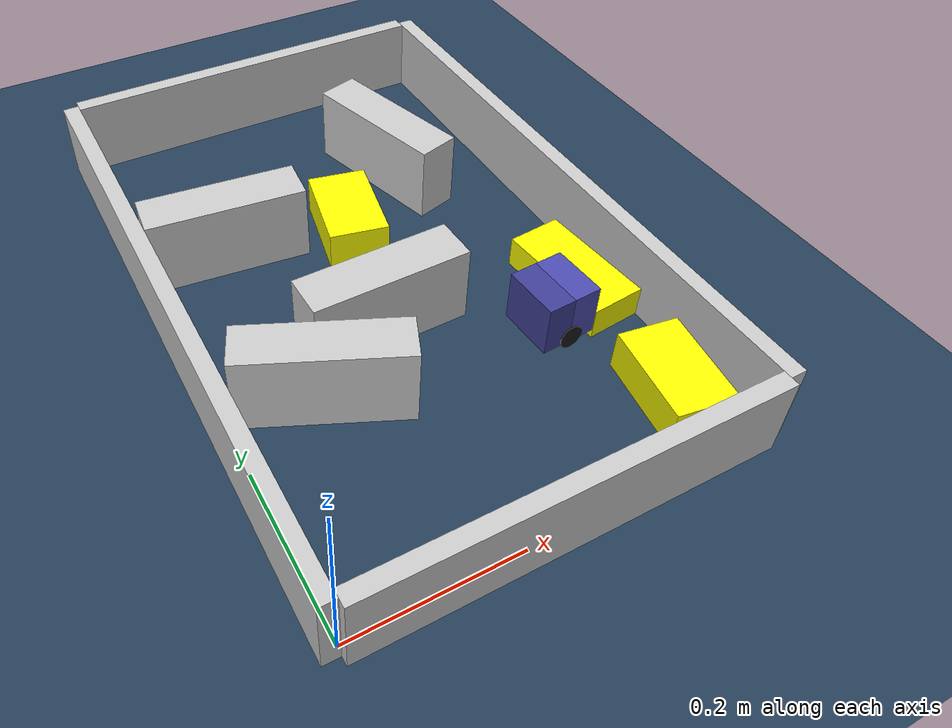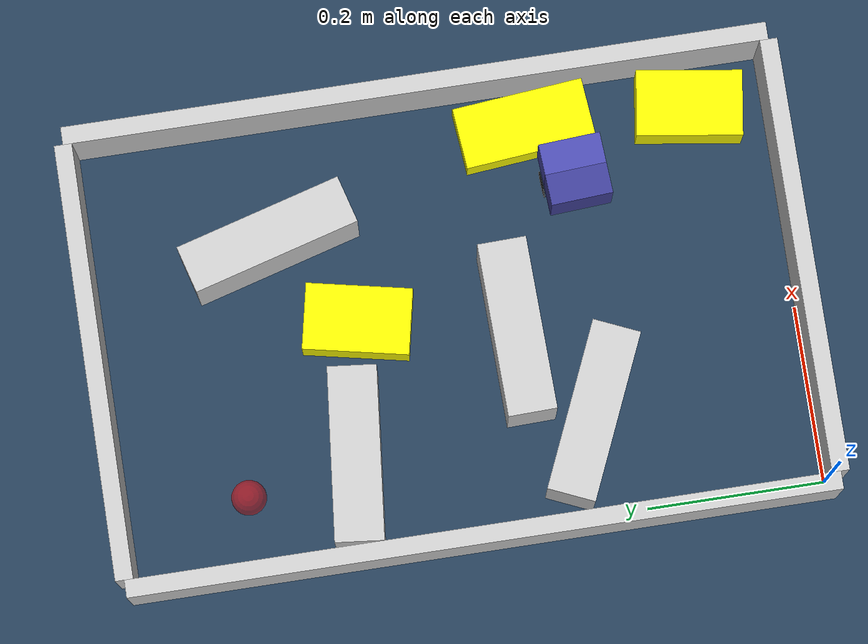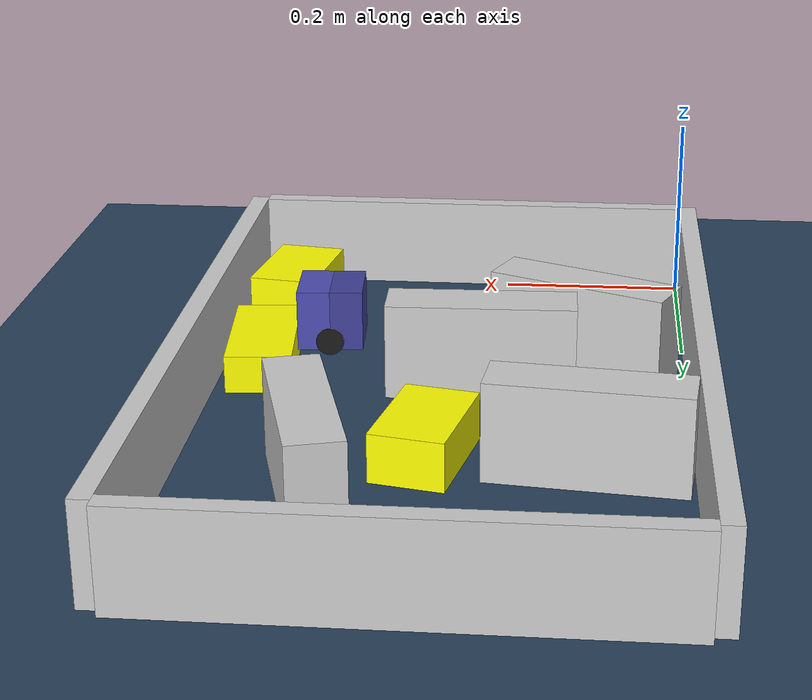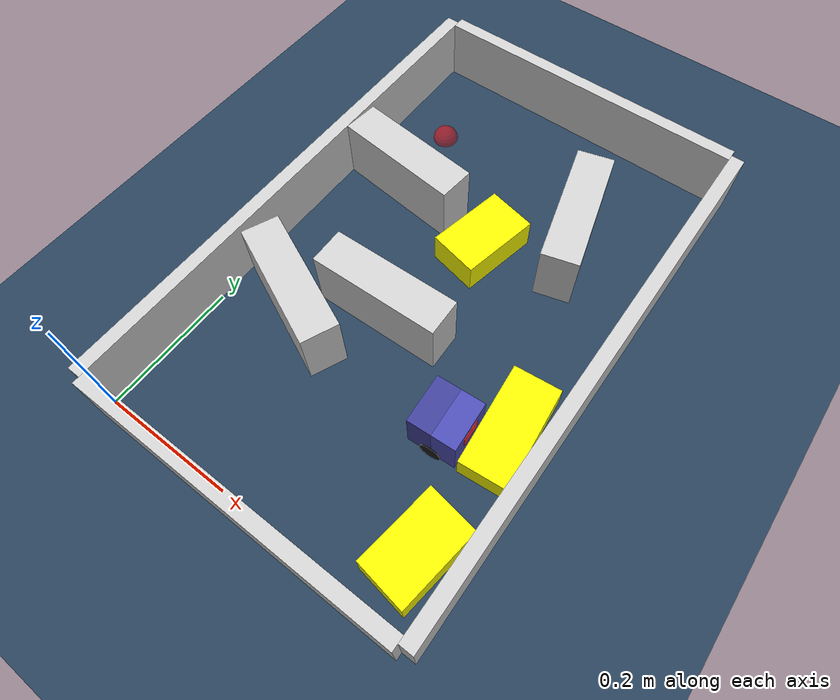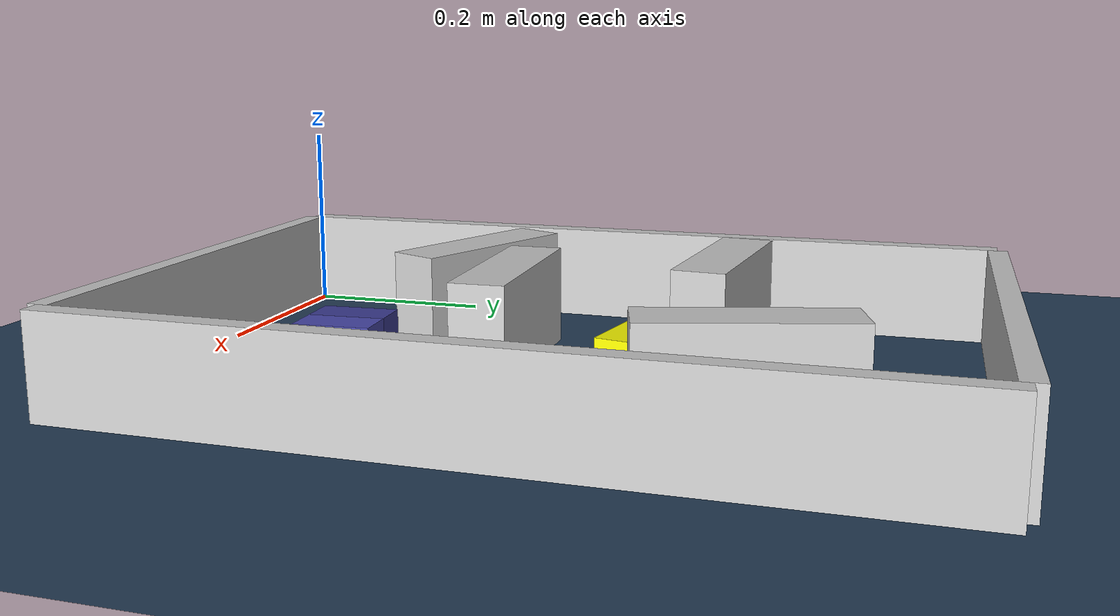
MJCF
<?xml version='1.0' encoding='utf-8'?>
<mujoco model="real_buildable">
  <compiler angle="degree" />
  <option timestep="0.002" integrator="implicitfast" iterations="100" cone="elliptic" />
  <default>
    <geom density="1" />
  </default>
  <asset>
    <texture builtin="gradient" height="3072" rgb1="0.3 0.5 0.7" rgb2="0 0 0" type="skybox" width="512" />
    <texture builtin="checker" height="300" mark="edge" markrgb="0.8 0.8 0.8" name="groundplane" rgb1="0.2 0.3 0.4" rgb2="0.1 0.2 0.3" type="2d" width="300" />
    <material name="groundplane" reflectance="0.2" texrepeat="5 5" texture="groundplane" texuniform="true" />
  </asset>
  <worldbody>
    <light dir="0 0 -1" directional="true" pos="0 0 1.5" />
    <geom name="floor" type="plane" condim="4" friction="0.5 0.005 0.001" material="groundplane" size="0 0 0.05" />
    <body name="walls">
      <geom name="wall_boundary_left" type="box" condim="4" friction="1.0 0.005 0.0001" rgba="0.8 0.8 0.8 1" pos="-0.010000 0.387500 0.050000" euler="0 0 0.000000" size="0.010000 0.397500 0.050000" />
      <geom name="wall_boundary_right" type="box" condim="4" friction="1.0 0.005 0.0001" rgba="0.8 0.8 0.8 1" pos="0.500000 0.387500 0.050000" euler="0 0 0.000000" size="0.010000 0.397500 0.050000" />
      <geom name="wall_boundary_bottom" type="box" condim="4" friction="1.0 0.005 0.0001" rgba="0.8 0.8 0.8 1" pos="0.245000 -0.010000 0.050000" euler="0 0 0.000000" size="0.245000 0.010000 0.050000" />
      <geom name="wall_boundary_top" type="box" condim="4" friction="1.0 0.005 0.0001" rgba="0.8 0.8 0.8 1" pos="0.245000 0.785000 0.050000" euler="0 0 0.000000" size="0.245000 0.010000 0.050000" />
      <geom name="wall_inner_1" type="box" condim="4" friction="1.0 0.005 0.0001" rgba="0.8 0.8 0.8 1" pos="0.212622 0.316752 0.050000" euler="0 0 1.464759" size="0.097500 0.027500 0.050000" />
      <geom name="wall_inner_2" type="box" condim="4" friction="1.0 0.005 0.0001" rgba="0.8 0.8 0.8 1" pos="0.107540 0.247215 0.050000" euler="0 0 -23.865866" size="0.097500 0.027500 0.050000" />
      <geom name="wall_inner_3" type="box" condim="4" friction="1.0 0.005 0.0001" rgba="0.8 0.8 0.8 1" pos="0.100000 0.514000 0.050000" euler="0 0 174.100000" size="0.097500 0.027500 0.050000" />
      <geom name="wall_inner_4" type="box" condim="4" friction="1.0 0.005 0.0001" rgba="0.8 0.8 0.8 1" pos="0.356000 0.575000 0.050000" euler="0 0 105.500000" size="0.097500 0.027500 0.050000" />
    </body>
    <body name="car" pos="0.38094706187373378 0.22420285340945495 0.01" quat="0.99951504492416665 0 0 0.031139604529299387">
      <freejoint name="car_freejoint" />
      <inertial pos="0 0 0.0375" mass="0.35" diaginertia="0.000266 0.000266 0.000286" />
      <geom name="front_chassis_collision" type="box" pos="0.0175 0 0.0375" size="0.0175 0.035 0.0325" rgba="0.3 0.3 0.7 1" />
      <geom name="rear_chassis_collision" type="box" pos="-0.0175 0 0.0375" size="0.0175 0.035 0.0325" rgba="0.25 0.25 0.6 1" />
      <geom name="front_marker" type="box" pos="0.034 0 0.0505" size="0.002 0.015 0.01" rgba="1 0.2 0.2 1" contype="0" conaffinity="0" />
      <body name="rear_support_body" pos="-0.03 0 0.0025">
        <joint name="rear_caster_joint" type="ball" damping="0.0001" />
        <inertial pos="0 0 0" mass="0.025" diaginertia="0.000001 0.000001 0.000001" />
        <geom name="rear_support" type="sphere" pos="0 0 0" size="0.0025" friction="0 0 0" rgba="0.7 0.1 0.1 1" />
      </body>
      <body name="front_support_body" pos="0.03 0 0.0025">
        <joint name="front_caster_joint" type="ball" damping="0.0001" />
        <inertial pos="0 0 0" mass="0.025" diaginertia="0.000001 0.000001 0.000001" />
        <geom name="front_support" type="sphere" pos="0 0 0" size="0.0025" friction="0 0 0" rgba="0.1 0.7 0.1 1" />
      </body>
      <body name="left_wheel" pos="0 0.0375 0.015">
        <inertial pos="0 0 0" mass="0.05" diaginertia="0.000003 0.000006 0.000003" />
        <joint name="left_wheel_joint" type="hinge" axis="0 1 0" damping="0.01" armature="0.0001" />
        <geom name="left_wheel_collision" type="cylinder" size="0.015 0.0005" euler="90 0 0" rgba="0.1 0.1 0.1 1" />
      </body>
      <body name="right_wheel" pos="0 -0.0375 0.015">
        <inertial pos="0 0 0" mass="0.05" diaginertia="0.000003 0.000006 0.000003" />
        <joint name="right_wheel_joint" type="hinge" axis="0 1 0" damping="0.01" armature="0.0001" />
        <geom name="right_wheel_collision" type="cylinder" size="0.015 0.0005" euler="90 0 0" rgba="0.1 0.1 0.1 1" />
      </body>
    </body>
    <body name="obstacle_0_movable">
      <geom name="obstacle_0_movable" condim="4" pos="0.44830181522767837 0.27112622411178272 0.02" friction="1 0.005 0.0001" rgba="1 1 0 1" size="0.035000 0.075000 0.020000" type="box" mass="0.1" quat="0.99893602522012237 0 0 0.046117431817297092" />
      <joint type="free" />
    </body>
    <body name="obstacle_1_movable">
      <geom name="obstacle_1_movable" condim="4" pos="0.25499999999999917 0.48999999999999971 0.025000000000000001" friction="1 0.005 0.0001" rgba="1 1 0 1" size="0.037500 0.060000 0.025000" type="box" mass="0.1" quat="0.99470281711717423 0 0 -0.10279253678724681" />
      <joint type="free" />
    </body>
    <body name="obstacle_2_movable">
      <geom name="obstacle_2_movable" condim="4" pos="0.44178299999999987 0.084040000000000073 0.025000000000000001" friction="1 0.005 0.0001" rgba="1 1 0 1" size="0.037500 0.060000 0.025000" type="box" mass="0.1" quat="0.073701539438623689 0 0 0.99728034327583981" />
      <joint type="free" />
    </body>
    <site name="goal" type="sphere" pos="0.080000 0.640000 0.0" size="0.02" rgba="1 0 0 0.5" />
  </worldbody>
  <actuator>
    <velocity name="left_wheel_drive" joint="left_wheel_joint" ctrlrange="-25 25" kv="0.75" forcerange="-0.5 0.5" />
    <velocity name="right_wheel_drive" joint="right_wheel_joint" ctrlrange="-25 25" kv="0.75" forcerange="-0.5 0.5" />
  </actuator>
</mujoco>
